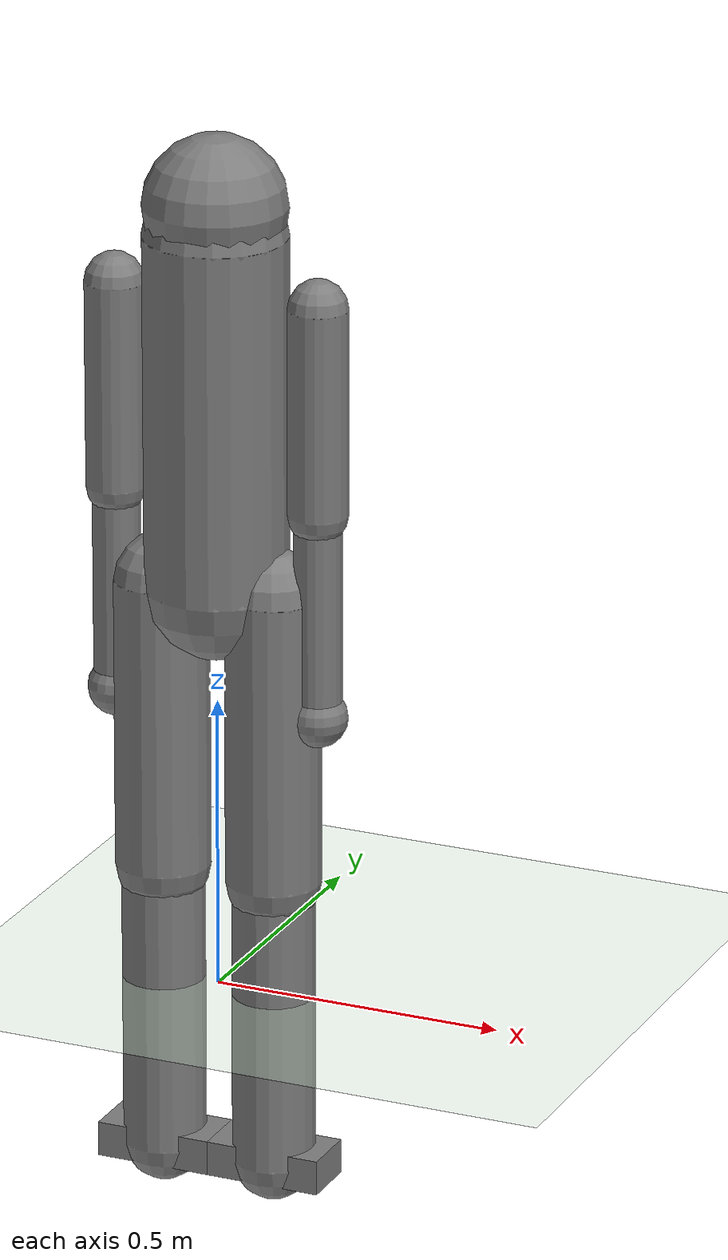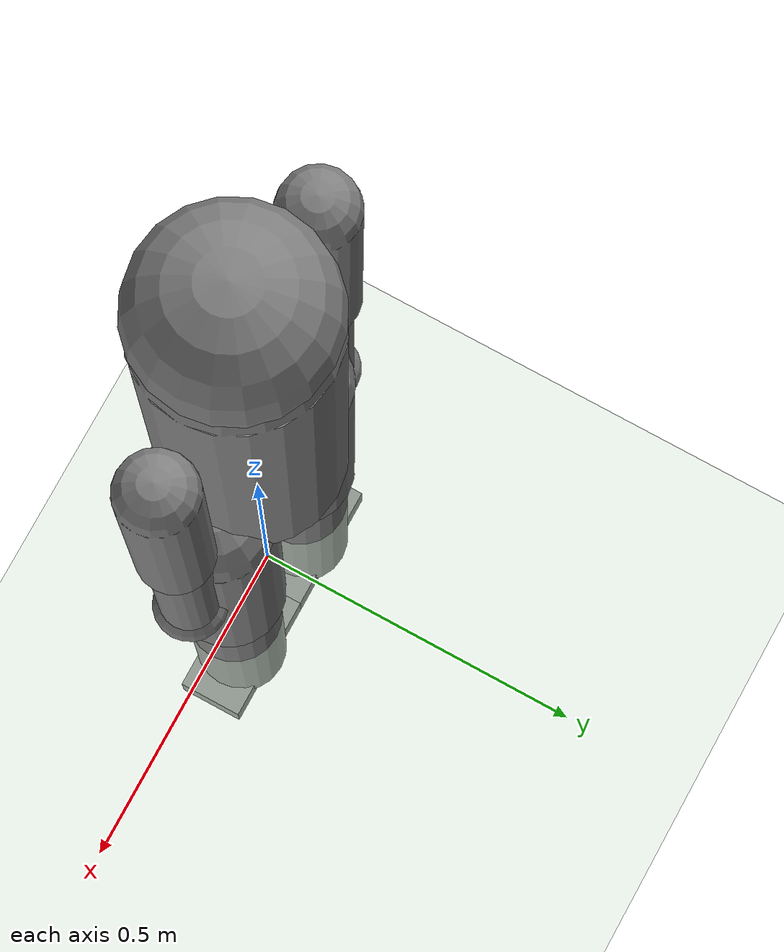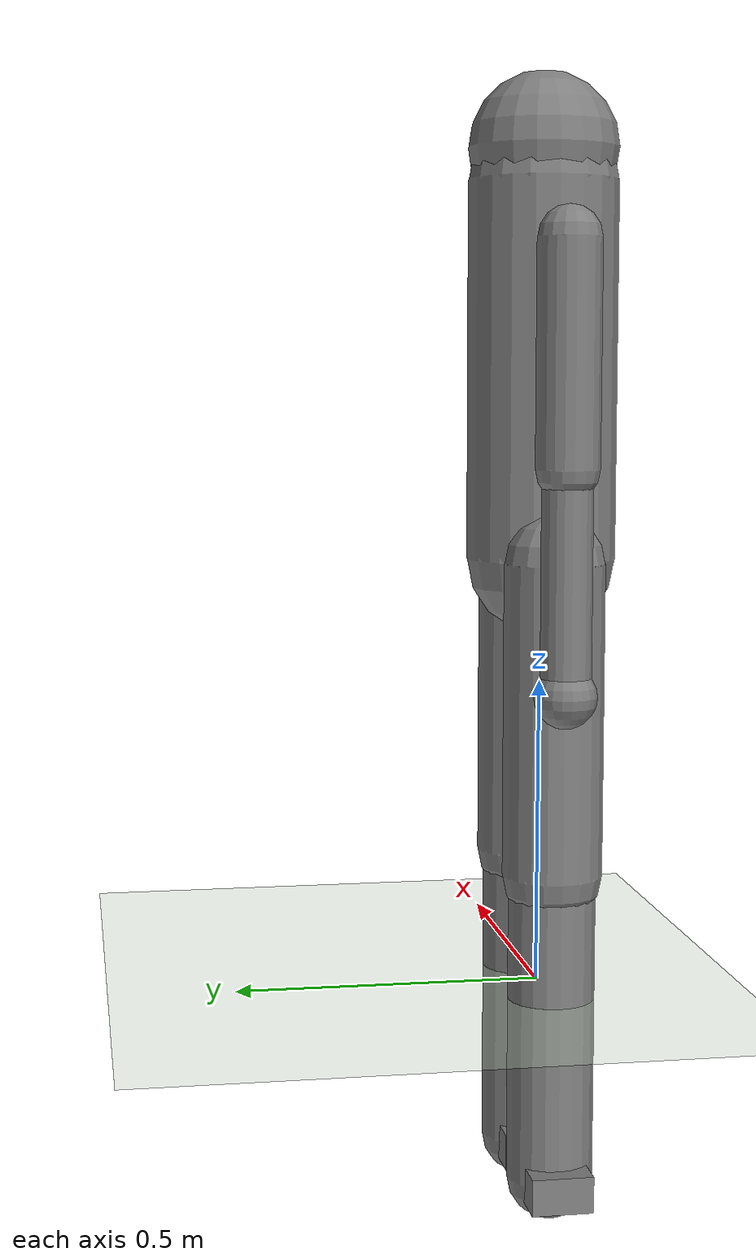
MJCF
<mujoco model="humanoid">

  <!-- Better physics -->
  <option gravity="0 0 -9.81" timestep="0.002" iterations="50"/>

  <default>
    <!-- Add damping to stop shaking -->
    <joint damping="5" stiffness="10"/>
    <geom friction="1 0.1 0.1" density="1000"/>
  </default>

  <worldbody>
    <!-- Ground -->
    <geom type="plane" size="5 5 0.1" rgba="0.8 0.9 0.8 1"/>

    <!-- ROOT -->
    <body name="torso" pos="0 0 1.0">
      <joint name="root" type="free"/>

      <!-- Torso -->
      <geom type="capsule" size="0.12 0.3" fromto="0 0 0.3 0 0 -0.3" mass="8"/>

      <!-- HEAD -->
      <body name="head" pos="0 0 0.35">
        <joint name="neck" type="hinge" axis="0 1 0" range="-30 30" damping="3"/>
        <geom type="sphere" size="0.12" mass="2"/>
      </body>

      <!-- LEFT ARM -->
      <body name="left_upper_arm" pos="0.18 0 0.2">
        <joint name="left_shoulder_pitch" type="hinge" axis="0 1 0" range="-120 120" damping="4"/>
        <geom type="capsule" size="0.05 0.25" fromto="0 0 0 0 0 -0.35" mass="2"/>

        <body name="left_lower_arm" pos="0 0 -0.35">
          <joint name="left_elbow" type="hinge" axis="0 1 0" range="-120 0" damping="4"/>
          <geom type="capsule" size="0.04 0.25" fromto="0 0 0 0 0 -0.35" mass="1"/>

          <body name="left_hand" pos="0 0 -0.35">
            <geom type="sphere" size="0.05" mass="0.5"/>
          </body>
        </body>
      </body>

      <!-- RIGHT ARM -->
      <body name="right_upper_arm" pos="-0.18 0 0.2">
        <joint name="right_shoulder" type="hinge" axis="0 1 0" range="-120 120" damping="4"/>
        <geom type="capsule" size="0.05 0.25" fromto="0 0 0 0 0 -0.35" mass="2"/>

        <body name="right_lower_arm" pos="0 0 -0.35">
          <joint name="right_elbow" type="hinge" axis="0 1 0" range="-120 0" damping="4"/>
          <geom type="capsule" size="0.04 0.25" fromto="0 0 0 0 0 -0.35" mass="1"/>

          <body name="right_hand" pos="0 0 -0.35">
            <geom type="sphere" size="0.05" mass="0.5"/>
          </body>
        </body>
      </body>

      <!-- LEFT LEG -->
      <body name="left_thigh" pos="0.1 0 -0.3">
        <joint name="left_hip" type="hinge" axis="1 0 0" range="-40 40" damping="6"/>
        <geom type="capsule" size="0.08 0.35" fromto="0 0 0 0 0 -0.5" mass="5"/>

        <body name="left_shin" pos="0 0 -0.5">
          <joint name="left_knee" type="hinge" axis="1 0 0" range="-80 0" damping="6"/>
          <geom type="capsule" size="0.07 0.35" fromto="0 0 0 0 0 -0.5" mass="4"/>

          <body name="left_foot" pos="0 0 -0.5">
            <geom type="box" size="0.1 0.05 0.03" mass="2"/>
          </body>
        </body>
      </body>

      <!-- RIGHT LEG -->
      <body name="right_thigh" pos="-0.1 0 -0.3">
        <joint name="right_hip" type="hinge" axis="1 0 0" range="-40 40" damping="6"/>
        <geom type="capsule" size="0.08 0.35" fromto="0 0 0 0 0 -0.5" mass="5"/>

        <body name="right_shin" pos="0 0 -0.5">
          <joint name="right_knee" type="hinge" axis="1 0 0" range="-80 0" damping="6"/>
          <geom type="capsule" size="0.07 0.35" fromto="0 0 0 0 0 -0.5" mass="4"/>

          <body name="right_foot" pos="0 0 -0.5">
            <geom type="box" size="0.1 0.05 0.03" mass="2"/>
          </body>
        </body>
      </body>

    </body>
  </worldbody>

  <!-- Actuators -->
  <actuator>
    <motor joint="left_hip" ctrlrange="-1 1"/>
    <motor joint="left_knee" ctrlrange="-1 1"/>
    <motor joint="right_hip" ctrlrange="-1 1"/>
    <motor joint="right_knee" ctrlrange="-1 1"/>
    <motor joint="left_shoulder_pitch" ctrlrange="-1 1"/>
    <motor joint="left_elbow" ctrlrange="-1 1"/>
    <motor joint="right_shoulder" ctrlrange="-1 1"/>
    <motor joint="right_elbow" ctrlrange="-1 1"/>
    <motor joint="neck" ctrlrange="-1 1"/>
  </actuator>

</mujoco>
